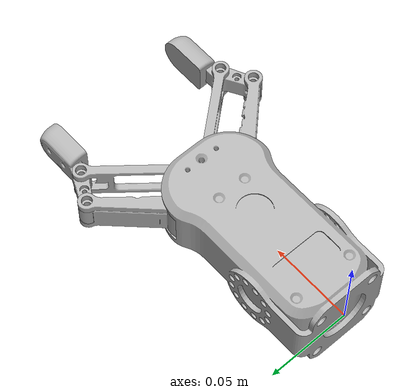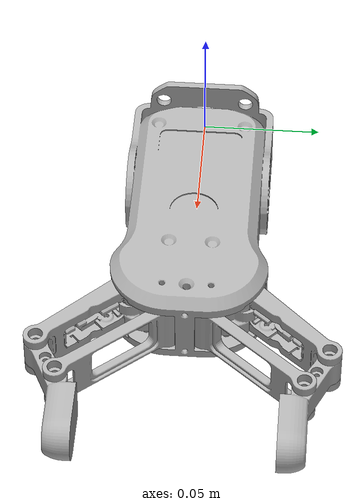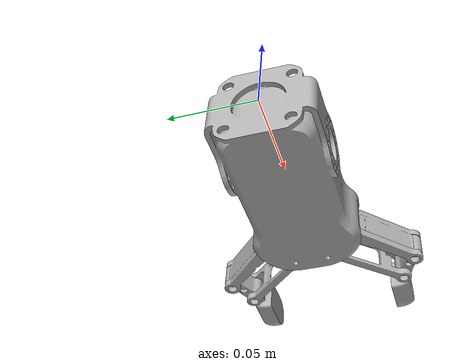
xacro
<?xml version="1.0" ?>
<robot name="rg2" xmlns:xacro="http://ros.org/wiki/xacro">
    <xacro:include filename="$(find onrobot_rg2)/urdf/rg2.macro.xacro" />
    <xacro:onrobot_rg2 prefix="rg2_" standalone="true"/>
    <link name="world"/>
    <joint name="rg2_world_link" type="fixed">
        <parent link="world"/>
        <child link="rg2_base_link"/>
        <origin xyz="0 0 0" rpy="0 0 0"/>
    </joint>
</robot>

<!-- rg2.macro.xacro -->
<!-- This file contains the main macro for the onrobot rg2 -->
<robot name="onrobot_rg2_macro" xmlns:xacro="http://ros.org/wiki/xacro">
    <xacro:macro name="onrobot_rg2" params="prefix standalone">
        <xacro:property name="joint_effort" value="1"/>
        <xacro:property name="joint_velocity" value="2"/>
        <material name="silver">
            <color rgba="0.700 0.700 0.700 1.000"/>
        </material>
        <!-- ======== LINKS ========-->
        <link name="${prefix}base_link">
            <inertial>
                <origin rpy="0 0 0" xyz="0.05411488933415834 -0.0001024352097312668 -3.928081769485662e-05"/>
                <mass value="1.5357586911189074"/>
                <inertia ixx="0.00057" ixy="2e-06" ixz="-1e-06" iyy="0.001696" iyz="-0.0" izz="0.001898"/>
            </inertial>
            <visual>
                <origin rpy="0 0 0" xyz="0 0 0"/>
                <geometry>
                    <mesh filename="package://onrobot_rg2/meshes/base_link.stl" scale="0.001 0.001 0.001"/>
                </geometry>
                <material name="silver"/>
            </visual>
            <collision>
                <origin rpy="0 0 0" xyz="0 0 0"/>
                <geometry>
                    <mesh filename="package://onrobot_rg2/meshes/base_link.stl" scale="0.001 0.001 0.001"/>
                </geometry>
            </collision>
        </link>
        <link name="${prefix}left_finger">
            <inertial>
                <origin rpy="0 0 0" xyz="0.02875515360560227 -0.011139525072908746 -0.005299825895215888"/>
                <mass value="0.06346447085199992"/>
                <inertia ixx="3e-06" ixy="4e-06" ixz="0.0" iyy="1.5e-05" iyz="0.0" izz="1.6e-05"/>
            </inertial>
            <visual>
                <origin rpy="0 0 0" xyz="-0.134353 -0.059032 -0.005305"/>
                <geometry>
                    <mesh filename="package://onrobot_rg2/meshes/rg2_left_finger.stl" scale="0.001 0.001 0.001"/>
                </geometry>
                <material name="silver"/>
            </visual>
            <collision>
                <origin rpy="0 0 0" xyz="-0.134353 -0.059032 -0.005305"/>
                <geometry>
                    <mesh filename="package://onrobot_rg2/meshes/rg2_left_finger.stl" scale="0.001 0.001 0.001"/>
                </geometry>
            </collision>
        </link>
        <link name="${prefix}right_finger">
            <inertial>
                <origin rpy="0 0 0" xyz="0.028755152484580992 0.011139532724237934 -0.005299827326906724"/>
                <mass value="0.06346446545192494"/>
                <inertia ixx="3e-06" ixy="-4e-06" ixz="0.0" iyy="1.5e-05" iyz="-0.0" izz="1.6e-05"/>
            </inertial>
            <visual>
                <origin rpy="0 0 0" xyz="-0.134353 0.059232 -0.005305"/>
                <geometry>
                    <mesh filename="package://onrobot_rg2/meshes/rg2_right_finger.stl" scale="0.001 0.001 0.001"/>
                </geometry>
                <material name="silver"/>
            </visual>
            <collision>
                <origin rpy="0 0 0" xyz="-0.134353 0.059232 -0.005305"/>
                <geometry>
                    <mesh filename="package://onrobot_rg2/meshes/rg2_right_finger.stl" scale="0.001 0.001 0.001"/>
                </geometry>
            </collision>
        </link>
        <link name="${prefix}right_outer_link">
            <inertial>
                <origin rpy="0 0 0" xyz="-0.099 0.0171 0.008595"/>
                <mass value="0.01"/>
                <inertia ixx="0.01" ixy="0.00" ixz="0.0" iyy="0.01" iyz="0.0" izz="0.01"/>
            </inertial>
            <visual>
                <origin rpy="0 0 0" xyz="-0.099 0.0171 0.008595"/>
                <geometry>
                    <mesh filename="package://onrobot_rg2/meshes/rg2_right_outer_link.stl" scale="0.001 0.001 0.001"/>
                </geometry>
                <material name="silver"/>
            </visual>
            <collision>
                <origin rpy="0 0 0" xyz="-0.099 0.0171 0.008595"/>
                <geometry>
                    <mesh filename="package://onrobot_rg2/meshes/rg2_right_outer_link.stl" scale="0.001 0.001 0.001"/>
                </geometry>
            </collision>
        </link>
        <link name="${prefix}left_outer_link">
            <inertial>
                <origin rpy="0 0 0" xyz="-0.099 -0.0169 0.008595"/>
                <mass value="0.01"/>
                <inertia ixx="0.01" ixy="0.0" ixz="0.0" iyy="0.01" iyz="0.0" izz="0.01"/>
            </inertial>
            <visual>
                <origin rpy="0 0 0" xyz="-0.099 -0.0169 0.008595"/>
                <geometry>
                    <mesh filename="package://onrobot_rg2/meshes/rg2_left_outer_link.stl" scale="0.001 0.001 0.001"/>
                </geometry>
                <material name="silver"/>
            </visual>
            <collision>
                <origin rpy="0 0 0" xyz="-0.099 -0.0169 0.008595"/>
                <geometry>
                    <mesh filename="package://onrobot_rg2/meshes/rg2_left_outer_link.stl" scale="0.001 0.001 0.001"/>
                </geometry>
            </collision>
        </link>
        <link name="${prefix}left_inner_link">
            <inertial>
                <origin rpy="0 0 0" xyz="0.013684817058033302 0.016364376889961313 -0.008749826851698"/>
                <mass value="0.02609411603100668"/>
                <inertia ixx="8e-06" ixy="-6e-06" ixz="-0.0" iyy="6e-06" iyz="-0.0" izz="1.2e-05"/>
            </inertial>
            <visual>
                <origin rpy="0 0 0" xyz="-0.1155 -0.0074 -0.008755"/>
                <geometry>
                    <mesh filename="package://onrobot_rg2/meshes/rg2_left_inner_link.stl" scale="0.001 0.001 0.001"/>
                </geometry>
                <material name="silver"/>
            </visual>
            <collision>
                <origin rpy="0 0 0" xyz="-0.1155 -0.0074 -0.008755"/>
                <geometry>
                    <mesh filename="package://onrobot_rg2/meshes/rg2_left_inner_link.stl" scale="0.001 0.001 0.001"/>
                </geometry>
            </collision>
        </link>
        <link name="${prefix}right_inner_link">
            <inertial>
                <origin rpy="0 0 0" xyz="0.013684817060011192 -0.01636437507697131 -0.008749826514947753"/>
                <mass value="0.026094116025041938"/>
                <inertia ixx="8e-06" ixy="6e-06" ixz="0.0" iyy="6e-06" iyz="-0.0" izz="1.2e-05"/>
            </inertial>
            <visual>
                <origin rpy="0 0 0" xyz="-0.1155 0.0076 -0.008755"/>
                <geometry>
                    <mesh filename="package://onrobot_rg2/meshes/rg2_right_inner_link.stl" scale="0.001 0.001 0.001"/>
                </geometry>
                <material name="silver"/>
            </visual>
            <collision>
                <origin rpy="0 0 0" xyz="-0.1155 0.0076 -0.008755"/>
                <geometry>
                    <mesh filename="package://onrobot_rg2/meshes/rg2_right_inner_link.stl" scale="0.001 0.001 0.001"/>
                </geometry>
            </collision>
        </link>
        <!-- ======== JOINTS ========-->
        <joint name="${prefix}left_outer_joint" type="continuous">
            <origin rpy="0 0 0" xyz="0.035353 0.042132 0.0139"/>
            <parent link="${prefix}left_outer_link"/>
            <child link="${prefix}left_finger"/>
            <axis xyz="0.0 -0.0 1.0"/>
            <mimic joint="${prefix}left_main_joint" multiplier="-1" />
            <limit effort="${joint_effort}" velocity="${joint_velocity}"/>
        </joint>
        <joint name="${prefix}right_outer_joint" type="continuous">
            <origin rpy="0 0 0" xyz="0.035353 -0.042132 0.0139"/>
            <parent link="${prefix}right_outer_link"/>
            <child link="${prefix}right_finger"/>
            <axis xyz="0.0 -0.0 1.0"/>
            <mimic joint="${prefix}right_main_joint" multiplier="-1" />
            <limit effort="${joint_effort}" velocity="${joint_velocity}"/>
        </joint>
        <joint name="${prefix}right_main_joint" type="revolute">
            <origin rpy="0 0 0" xyz="0.099 -0.0171 -0.008595"/>
            <parent link="${prefix}base_link"/>
            <child link="${prefix}right_outer_link"/>
            <axis xyz="0.0 0.0 1.0"/>
            <limit lower="-0.30" upper="0.84" effort="${joint_effort}" velocity="${joint_velocity}"/>
        </joint>
        <joint name="${prefix}left_main_joint" type="revolute">
            <origin rpy="0 0 0" xyz="0.099 0.0169 -0.008595"/>
            <parent link="${prefix}base_link"/>
            <child link="${prefix}left_outer_link"/>
            <axis xyz="-0.0 0.0 1.0"/>
            <limit lower="-0.84" upper="0.30" effort="${joint_effort}" velocity="${joint_velocity}"/>
        </joint>
        <joint name="${prefix}left_secondary_joint" type="continuous">
            <origin rpy="0 0 0" xyz="0.1155 0.0074 0.008755"/>
            <parent link="${prefix}base_link"/>
            <child link="${prefix}left_inner_link"/>
            <axis xyz="-0.0 0.0 1.0"/>
            <mimic joint="${prefix}left_main_joint" />
            <limit effort="${joint_effort}" velocity="${joint_velocity}"/>
        </joint>
        <joint name="${prefix}right_secondary_joint" type="continuous">
            <origin rpy="0 0 0" xyz="0.1155 -0.0076 0.008755"/>
            <parent link="${prefix}base_link"/>
            <child link="${prefix}right_inner_link"/>
            <axis xyz="-0.0 0.0 1.0"/>
            <mimic joint="${prefix}right_main_joint" />
            <limit effort="${joint_effort}" velocity="${joint_velocity}"/>
        </joint>

        <xacro:include filename="$(find onrobot_rg2)/urdf/rg2.gazebo.xacro"/>
        <xacro:onrobot_rg2_gazebo prefix="${prefix}" standalone="${standalone}"/>
        <xacro:include filename="$(find onrobot_rg2)/urdf/rg2.transmissions.xacro" />
        <xacro:onrobot_rg2_transmissions prefix="${prefix}"/>
    </xacro:macro>
</robot>

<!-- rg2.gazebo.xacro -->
<!-- Set all the gazebo properties -->
<robot name="onrobot_rg2_macro" xmlns:xacro="http://www.ros.org/wiki/xacro" >
    <xacro:macro name="onrobot_rg2_gazebo" params="prefix standalone">
        <xacro:property name="body_color" value="Gazebo/Grey" />
        <xacro:property name="finger_color" value="Gazebo/DarkGrey" />

        <xacro:if value="${standalone}">
            <gazebo>
                <plugin filename="libgazebo_ros_control.so" name="control">
                </plugin>
            </gazebo>
        </xacro:if>
        <gazebo reference="${prefix}base_link">
            <material>${body_color}</material>
            <mu1>0.2</mu1>
            <mu2>0.2</mu2>
            <selfCollide>false</selfCollide>
            <gravity>true</gravity>
        </gazebo>

        <gazebo reference="${prefix}left_inner_link">
            <material>${body_color}</material>
            <mu1>0.2</mu1>
            <mu2>0.2</mu2>
            <selfCollide>false</selfCollide>
        </gazebo>

        <gazebo reference="${prefix}left_finger">
            <material>${finger_color}</material>
            <mu1>0.2</mu1>
            <mu2>0.2</mu2>
            <selfCollide>false</selfCollide>
        </gazebo>

        <gazebo reference="${prefix}right_inner_link">
            <material>${body_color}</material>
            <mu1>0.2</mu1>
            <mu2>0.2</mu2>
            <selfCollide>false</selfCollide>
        </gazebo>

        <gazebo reference="${prefix}right_finger">
            <material>${finger_color}</material>
            <mu1>0.2</mu1>
            <mu2>0.2</mu2>
            <selfCollide>false</selfCollide>
        </gazebo>

        <gazebo reference="${prefix}right_outer_link">
            <material>${body_color}</material>
            <mu1>0.2</mu1>
            <mu2>0.2</mu2>
            <selfCollide>false</selfCollide>
        </gazebo>

        <gazebo reference="${prefix}left_outer_link">
            <material>${body_color}</material>
            <mu1>0.2</mu1>
            <mu2>0.2</mu2>
            <selfCollide>false</selfCollide>
        </gazebo>

        <gazebo reference="${prefix}left_inner_link">
            <material>${body_color}</material>
            <mu1>0.2</mu1>
            <mu2>0.2</mu2>
            <selfCollide>false</selfCollide>
        </gazebo>

        <gazebo reference="${prefix}right_inner_link">
            <material>${body_color}</material>
            <mu1>0.2</mu1>
            <mu2>0.2</mu2>
            <selfCollide>false</selfCollide>
        </gazebo>
    </xacro:macro>
</robot>
